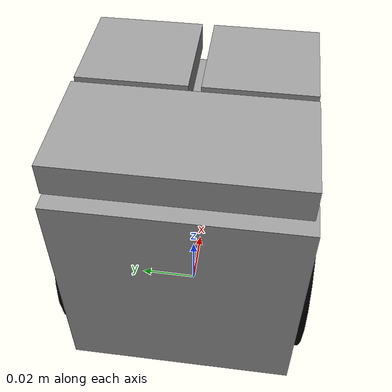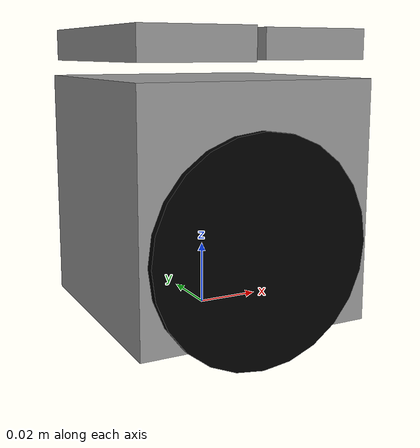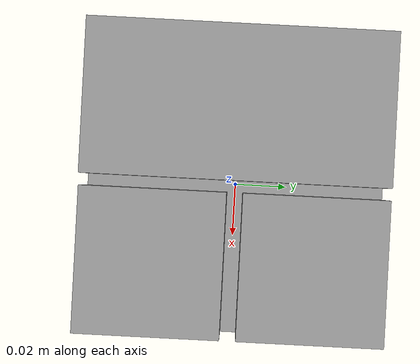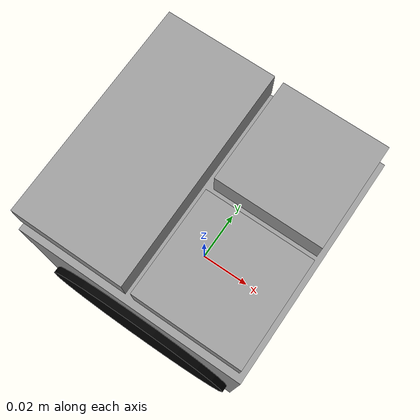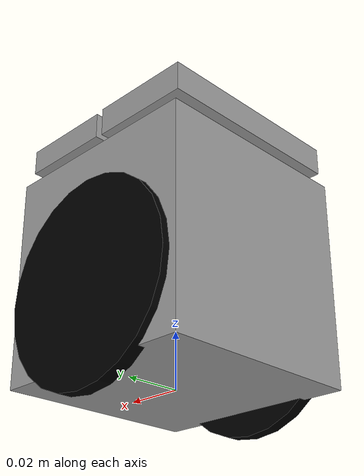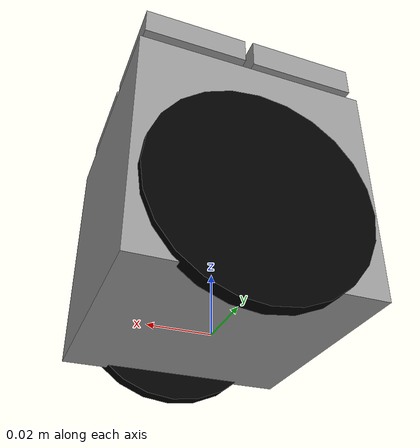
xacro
<robot xmlns:xacro="http://ros.org/wiki/xacro" name="vsss_robot">

    <!-- Parameters -->

    <xacro:arg name='robot_name' default="robot"/>
    <xacro:arg name='dominant_plate_color' default="BlueLaser"/>
    <xacro:arg name='small_plate_1' default="Green"/>
    <xacro:arg name='small_plate_2' default="Turquoise"/>
    <xacro:property name="wheel_radius" value="0.035"/>
    <xacro:property name="wheel_width" value="0.005"/>
    <xacro:property name="wheel_separation" value="0.075"/>
    <xacro:property name="body_size" value="0.075"/>

    <!-- Base Link -->
    <link name="$(arg robot_name)_base_link">
        <visual>
            <origin xyz="0 0 ${body_size / 2}" rpy="0 0 0"/>
            <geometry>
                <box size="${body_size} ${body_size} ${body_size}"/>
            </geometry>
            <material name="Gray">
                <color rgba="0.6 0.6 0.6 1.0"/>
            </material>
        </visual>
        <collision>
            <origin xyz="0 0 ${body_size *0.1}" rpy="0 0 0"/>
            <geometry>
                <box size="${body_size} ${body_size} ${body_size*0.4}"/>
            </geometry>
        </collision>
        <inertial>
            <origin xyz="0 0 -0.01"/>
            <mass value="3.5"/>
            <inertia ixx="0.01" ixy="0.0" ixz="0.0" iyy="0.01" iyz="0.0" izz="0.01"/>
        </inertial>
    </link>

    <!-- Left Wheel -->
    <link name="left_wheel_link">
        <visual>
            <geometry>
                <cylinder radius="${wheel_radius}" length="${wheel_width}"/>
            </geometry>
            <origin rpy="0 0 0"/>
            <material name="Black">
                <color rgba="0.0 0.0 0.0 1.0"/>
            </material>
        </visual>
        <collision>
            <geometry>
                <cylinder radius="${wheel_radius}" length="${wheel_width}"/>
            </geometry>
            <origin rpy="0 0 0"/>
        </collision>
        <inertial>
            <mass value="0.2"/>
            <inertia ixx="0.001" ixy="0.0" ixz="0.0" iyy="0.001" iyz="0.0" izz="0.001"/>
        </inertial>
    </link>

    <!-- Right Wheel -->
    <link name="right_wheel_link">
        <visual>
            <geometry>
                <cylinder radius="${wheel_radius}" length="${wheel_width}"/>
            </geometry>
            <origin rpy="0 0 0"/>
            <material name="Black">
                <color rgba="0.0 0.0 0.0 1.0"/>
            </material>
        </visual>
        <collision>
            <geometry>
                <cylinder radius="${wheel_radius}" length="${wheel_width}"/>
            </geometry>
            <origin rpy="0 0 0"/>
        </collision>
        <inertial>
            <mass value="0.2"/>
            <inertia ixx="0.001" ixy="0.0" ixz="0.0" iyy="0.001" iyz="0.0" izz="0.001"/>
        </inertial>
    </link>

    <!-- Big plate-->
    <link name="dominant_plate_link">
        <visual>
            <geometry>
                <box size="${(body_size / 2) * 0.95} ${(body_size) * 0.95} 0.01"/>
            </geometry>
            <origin rpy="0 0 0"/>
            <material name="Gray">
                <color rgba="0.6 0.6 0.6 1.0"/>
            </material>
        </visual>
    </link>

    <!-- Small plate 1-->
    <link name="small_plate_1_link">
        <visual>
            <geometry>
                <box size="${(body_size / 2) * 0.9} ${(body_size / 2) * 0.9} 0.009"/>
            </geometry>
            <origin rpy="0 0 0"/>
            <material name="Gray">
                <color rgba="0.6 0.6 0.6 1.0"/>
            </material>
        </visual>
    </link>

    <!-- Small plate 2-->
    <link name="small_plate_2_link">
        <visual>
            <geometry>
                <box size="${(body_size / 2) * 0.9} ${(body_size / 2) * 0.9} 0.009"/>
            </geometry>
            <origin rpy="0 0 0"/>
            <material name="Gray">
                <color rgba="0.6 0.6 0.6 1.0"/>
            </material>
        </visual>
    </link>

    <!-- Wheel Joints -->
    <joint name="left_wheel_joint" type="continuous">
        <parent link="$(arg robot_name)_base_link"/>
        <child link="left_wheel_link"/>
        <origin xyz="0 -${wheel_separation/2} ${body_size*0.35}" rpy="1.57 0 0"/>
        <axis xyz="0 0 1"/>
    </joint>

    <joint name="right_wheel_joint" type="continuous">
        <parent link="$(arg robot_name)_base_link"/>
        <child link="right_wheel_link"/>
        <origin xyz="0 ${wheel_separation/2} ${body_size*0.35}" rpy="1.57 0 0"/>
        <axis xyz="0 0 1"/>
    </joint>

    <joint name="dominant_plate_joint" type="fixed">
        <parent link="$(arg robot_name)_base_link"/>
        <child link="dominant_plate_link"/>
        <origin xyz="${-body_size / 4} 0.0 ${body_size + 0.01}" rpy="0.0 0.0 0.0"/>
        <axis xyz="0 0 1"/>
    </joint>

    <joint name="small_plate_1_joint" type="fixed">
        <parent link="$(arg robot_name)_base_link"/>
        <child link="small_plate_1_link"/>
        <origin xyz="${body_size / 4} ${body_size / 4} ${body_size + 0.01}" rpy="0.0 0.0 0.0"/>
        <axis xyz="0 0 1"/>
    </joint>

    <joint name="small_plate_2_joint" type="fixed">
        <parent link="$(arg robot_name)_base_link"/>
        <child link="small_plate_2_link"/>
        <origin xyz="${body_size / 4} ${-body_size / 4} ${body_size + 0.01}" rpy="0.0 0.0 0.0"/>
        <axis xyz="0 0 1"/>
    </joint>

    <ros2_control name="GazeboSystem" type="system">
        <hardware>
            <plugin>gazebo_ros2_control/GazeboSystem</plugin>
        </hardware>

        <joint name="left_wheel_joint">
            <command_interface name="velocity"/>
            <state_interface name="velocity"/>
        </joint>

        <joint name="right_wheel_joint">
            <command_interface name="velocity"/>
            <state_interface name="velocity"/>
        </joint>
    </ros2_control>

    <!-- Gazebo Diff Drive Plugin -->
    <gazebo>
        <plugin name="$(arg robot_name)_diff_drive_controller" filename="libgazebo_ros_diff_drive.so">
        <ros>
            <namespace>/$(arg robot_name)</namespace>
        </ros>
            <left_joint>left_wheel_joint</left_joint>
            <right_joint>right_wheel_joint</right_joint>
            <wheel_separation>0.076</wheel_separation>
            <wheel_radius>0.03</wheel_radius>
            <wheel_diameter>0.06</wheel_diameter>
            <publish_odom>true</publish_odom>
            <odom_topic>odom</odom_topic>
            <cmd_vel_topic>cmd_vel</cmd_vel_topic>
            <robot_base_frame>$(arg robot_name)_base_link</robot_base_frame>
        </plugin>
    </gazebo>

    <!-- Gazebo Material -->
    <gazebo reference="$(arg robot_name)_base_link">
        <material>Gazebo/Black</material>
    </gazebo>
    <gazebo reference="left_wheel_link">
        <material>Gazebo/Black</material>
    </gazebo>
    <gazebo reference="right_wheel_link">
        <material>Gazebo/Black</material>
    </gazebo>

    <gazebo reference="dominant_plate_link">
        <material>Gazebo/$(arg dominant_plate_color)</material>
    </gazebo>

    <gazebo reference="small_plate_1_link">
        <material>Gazebo/$(arg small_plate_1)</material>
    </gazebo>

    <gazebo reference="small_plate_2_link">
        <material>Gazebo/$(arg small_plate_2)</material>
    </gazebo>

</robot>
